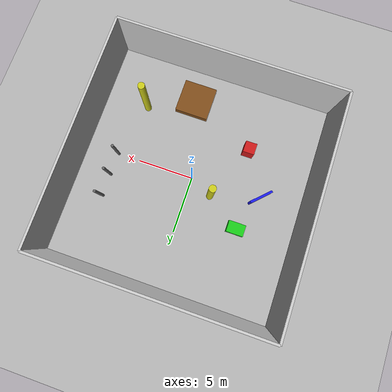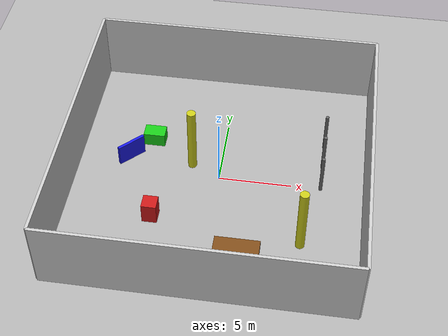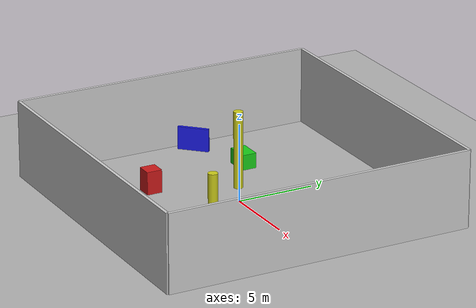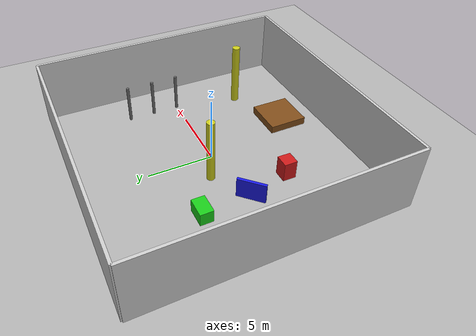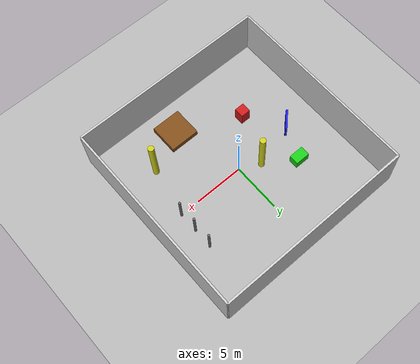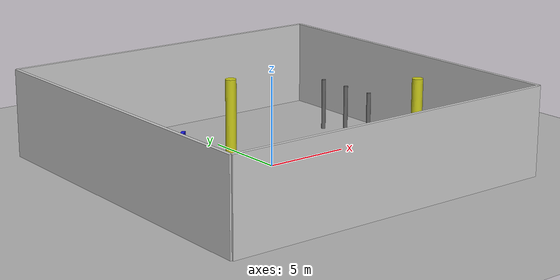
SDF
<?xml version="1.0" encoding="UTF-8"?>
<sdf version="1.9">
  <world name="indoor_obstacle">

    <!-- ── Physics (matching walls.sdf) ── -->
    <physics type="ode">
      <max_step_size>0.004</max_step_size>
      <real_time_factor>1.0</real_time_factor>
      <real_time_update_rate>250</real_time_update_rate>
    </physics>

    <gravity>0 0 -9.8</gravity>

    <!-- ── Magnetic field (critical for EKF2 heading) ── -->
    <magnetic_field>6e-06 2.3e-05 -4.2e-05</magnetic_field>

    <!-- ── Atmosphere (critical for EKF2 baro) ── -->
    <atmosphere type="adiabatic"/>

    <!-- ── Scene ── -->
    <scene>
      <grid>false</grid>
      <ambient>0.4 0.4 0.4 1</ambient>
      <background>0.7 0.7 0.7 1</background>
      <shadows>true</shadows>
    </scene>

    <!-- ── Spherical coordinates (critical for GPS) ── -->
    <spherical_coordinates>
      <surface_model>EARTH_WGS84</surface_model>
      <world_frame_orientation>ENU</world_frame_orientation>
      <latitude_deg>47.397971057728974</latitude_deg>
      <longitude_deg>8.546163739800146</longitude_deg>
      <elevation>0</elevation>
    </spherical_coordinates>

    <!-- ── Lighting ── -->
    <light name="sunUTC" type="directional">
      <pose>0 0 500 0 0 0</pose>
      <cast_shadows>true</cast_shadows>
      <intensity>1</intensity>
      <direction>0.001 0.625 -0.78</direction>
      <diffuse>0.904 0.904 0.904 1</diffuse>
      <specular>0.271 0.271 0.271 1</specular>
      <attenuation>
        <range>2000</range>
        <linear>0</linear>
        <constant>1</constant>
        <quadratic>0</quadratic>
      </attenuation>
    </light>

    <light name="point_light" type="point">
      <pose>0 0 4.8 0 0 0</pose>
      <diffuse>1.0 1.0 1.0 1</diffuse>
      <specular>0.3 0.3 0.3 1</specular>
      <attenuation>
        <range>20</range>
        <constant>0.4</constant>
        <linear>0.01</linear>
        <quadratic>0.001</quadratic>
      </attenuation>
    </light>

    <!-- ══════════════════════════════════════════
         FLOOR
    ══════════════════════════════════════════ -->
    <model name="ground_plane">
      <static>true</static>
      <pose>0 0 0 0 0 0</pose>
      <link name="link">
        <collision name="collision">
          <geometry>
            <plane>
              <normal>0 0 1</normal>
              <size>1 1</size>
            </plane>
          </geometry>
          <surface>
            <friction><ode/></friction>
            <bounce/>
            <contact/>
          </surface>
        </collision>
        <visual name="visual">
          <geometry>
            <plane>
              <normal>0 0 1</normal>
              <size>100 100</size>
            </plane>
          </geometry>
          <material>
            <ambient>0.6 0.6 0.6 1</ambient>
            <diffuse>0.7 0.7 0.7 1</diffuse>
            <specular>0.8 0.8 0.8 1</specular>
          </material>
        </visual>
      </link>
    </model>

    <!-- ══════════════════════════════════════════
         ROOM WALLS (no ceiling)
         20x20m open top room, 5m high walls
    ══════════════════════════════════════════ -->

    <!-- North wall (+X) -->
    <model name="wall_north">
      <static>true</static>
      <pose>10 0 2.5 0 0 0</pose>
      <link name="link">
        <collision name="collision">
          <geometry><box><size>0.2 20 5</size></box></geometry>
        </collision>
        <visual name="visual">
          <geometry><box><size>0.2 20 5</size></box></geometry>
          <material>
            <ambient>0.8 0.8 0.8 1</ambient>
            <diffuse>0.8 0.8 0.8 1</diffuse>
            <specular>1 1 1 1</specular>
          </material>
        </visual>
      </link>
    </model>

    <!-- South wall (-X) -->
    <model name="wall_south">
      <static>true</static>
      <pose>-10 0 2.5 0 0 0</pose>
      <link name="link">
        <collision name="collision">
          <geometry><box><size>0.2 20 5</size></box></geometry>
        </collision>
        <visual name="visual">
          <geometry><box><size>0.2 20 5</size></box></geometry>
          <material>
            <ambient>0.8 0.8 0.8 1</ambient>
            <diffuse>0.8 0.8 0.8 1</diffuse>
            <specular>1 1 1 1</specular>
          </material>
        </visual>
      </link>
    </model>

    <!-- East wall (+Y) -->
    <model name="wall_east">
      <static>true</static>
      <pose>0 10 2.5 0 0 0</pose>
      <link name="link">
        <collision name="collision">
          <geometry><box><size>20 0.2 5</size></box></geometry>
        </collision>
        <visual name="visual">
          <geometry><box><size>20 0.2 5</size></box></geometry>
          <material>
            <ambient>0.8 0.8 0.8 1</ambient>
            <diffuse>0.8 0.8 0.8 1</diffuse>
            <specular>1 1 1 1</specular>
          </material>
        </visual>
      </link>
    </model>

    <!-- West wall (-Y) -->
    <model name="wall_west">
      <static>true</static>
      <pose>0 -10 2.5 0 0 0</pose>
      <link name="link">
        <collision name="collision">
          <geometry><box><size>20 0.2 5</size></box></geometry>
        </collision>
        <visual name="visual">
          <geometry><box><size>20 0.2 5</size></box></geometry>
          <material>
            <ambient>0.8 0.8 0.8 1</ambient>
            <diffuse>0.8 0.8 0.8 1</diffuse>
            <specular>1 1 1 1</specular>
          </material>
        </visual>
      </link>
    </model>

    <!-- ══════════════════════════════════════════
         OBSTACLES
    ══════════════════════════════════════════ -->

    <!-- Red box -->
    <model name="box_red">
      <static>true</static>
      <pose>-4 -4 0.75 0 0 0</pose>
      <link name="link">
        <collision name="collision">
          <geometry><box><size>1.0 1.0 1.5</size></box></geometry>
        </collision>
        <visual name="visual">
          <geometry><box><size>1.0 1.0 1.5</size></box></geometry>
          <material>
            <ambient>0.8 0.1 0.1 1</ambient>
            <diffuse>0.8 0.1 0.1 1</diffuse>
            <specular>1 1 1 1</specular>
          </material>
        </visual>
      </link>
    </model>

    <!-- Green box -->
    <model name="box_green">
      <static>true</static>
      <pose>-5 3 0.5 0 0 0</pose>
      <link name="link">
        <collision name="collision">
          <geometry><box><size>1.5 1.0 1.0</size></box></geometry>
        </collision>
        <visual name="visual">
          <geometry><box><size>1.5 1.0 1.0</size></box></geometry>
          <material>
            <ambient>0.1 0.8 0.1 1</ambient>
            <diffuse>0.1 0.8 0.1 1</diffuse>
            <specular>1 1 1 1</specular>
          </material>
        </visual>
      </link>
    </model>

    <!-- Yellow pillar 1 -->
    <model name="pillar_1">
      <static>true</static>
      <pose>-2 1 2.5 0 0 0</pose>
      <link name="link">
        <collision name="collision">
          <geometry><cylinder><radius>0.3</radius><length>5.0</length></cylinder></geometry>
        </collision>
        <visual name="visual">
          <geometry><cylinder><radius>0.3</radius><length>5.0</length></cylinder></geometry>
          <material>
            <ambient>0.8 0.8 0.1 1</ambient>
            <diffuse>0.8 0.8 0.1 1</diffuse>
            <specular>1 1 1 1</specular>
          </material>
        </visual>
      </link>
    </model>

    <!-- Yellow pillar 2 -->
    <model name="pillar_2">
      <static>true</static>
      <pose>6 -5 2.5 0 0 0</pose>
      <link name="link">
        <collision name="collision">
          <geometry><cylinder><radius>0.3</radius><length>5.0</length></cylinder></geometry>
        </collision>
        <visual name="visual">
          <geometry><cylinder><radius>0.3</radius><length>5.0</length></cylinder></geometry>
          <material>
            <ambient>0.8 0.8 0.1 1</ambient>
            <diffuse>0.8 0.8 0.1 1</diffuse>
            <specular>1 1 1 1</specular>
          </material>
        </visual>
      </link>
    </model>

    <!-- Blue wall panel at flight height -->
    <model name="wall_panel_blue">
      <static>true</static>
      <pose>-6 0 2.0 0 0 0.785</pose>
      <link name="link">
        <collision name="collision">
          <geometry><box><size>2.0 0.2 1.5</size></box></geometry>
        </collision>
        <visual name="visual">
          <geometry><box><size>2.0 0.2 1.5</size></box></geometry>
          <material>
            <ambient>0.1 0.1 0.9 1</ambient>
            <diffuse>0.1 0.1 0.9 1</diffuse>
            <specular>1 1 1 1</specular>
          </material>
        </visual>
      </link>
    </model>

    <!-- Brown platform -->
    <model name="platform">
      <static>true</static>
      <pose>2 -7 0.3 0 0 0</pose>
      <link name="link">
        <collision name="collision">
          <geometry><box><size>3.0 3.0 0.6</size></box></geometry>
        </collision>
        <visual name="visual">
          <geometry><box><size>3.0 3.0 0.6</size></box></geometry>
          <material>
            <ambient>0.5 0.3 0.1 1</ambient>
            <diffuse>0.5 0.3 0.1 1</diffuse>
            <specular>1 1 1 1</specular>
          </material>
        </visual>
      </link>
    </model>

    <!-- Narrow poles -->
    <model name="pole_1">
      <static>true</static>
      <pose>7 0 1.5 0 0 0</pose>
      <link name="link">
        <collision name="collision">
          <geometry><cylinder><radius>0.12</radius><length>3.0</length></cylinder></geometry>
        </collision>
        <visual name="visual">
          <geometry><cylinder><radius>0.12</radius><length>3.0</length></cylinder></geometry>
          <material><ambient>0.4 0.4 0.4 1</ambient></material>
        </visual>
      </link>
    </model>

    <model name="pole_2">
      <static>true</static>
      <pose>7 2 1.5 0 0 0</pose>
      <link name="link">
        <collision name="collision">
          <geometry><cylinder><radius>0.12</radius><length>3.0</length></cylinder></geometry>
        </collision>
        <visual name="visual">
          <geometry><cylinder><radius>0.12</radius><length>3.0</length></cylinder></geometry>
          <material><ambient>0.4 0.4 0.4 1</ambient></material>
        </visual>
      </link>
    </model>

    <model name="pole_3">
      <static>true</static>
      <pose>7 4 1.5 0 0 0</pose>
      <link name="link">
        <collision name="collision">
          <geometry><cylinder><radius>0.12</radius><length>3.0</length></cylinder></geometry>
        </collision>
        <visual name="visual">
          <geometry><cylinder><radius>0.12</radius><length>3.0</length></cylinder></geometry>
          <material><ambient>0.4 0.4 0.4 1</ambient></material>
        </visual>
      </link>
    </model>

  </world>
</sdf>
